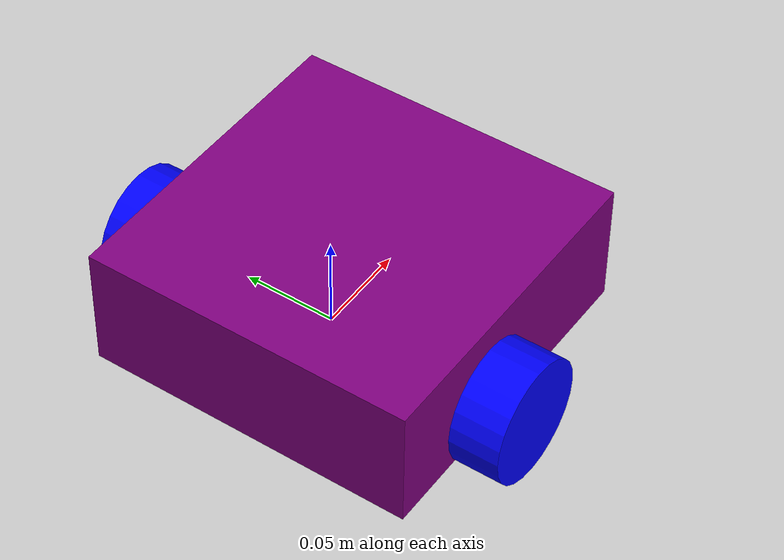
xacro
<?xml version="1.0"?>
<robot xmlns:xacro="http://www.ros.org/wiki/xacro">

    <xacro:include filename='materials.xacro'></xacro:include>
    <xacro:include filename='moi_macros.xacro'></xacro:include>

    <link name='base_link'>
    </link>

    <joint name='chassis_joint' type='fixed'>
        <parent link='base_link'/>
        <child link='chassis'/>
        <origin xyz='0.02 0 0.014'/>
    </joint>

    <link name='chassis'>
        <visual>
            <origin xyz='0 0 0'/>
            <geometry>
                <box size='0.18 0.18 0.068'/>
            </geometry>
            <material name='purple'/>
        </visual>
        <collision>
            <origin xyz='0 0 0'/>
            <geometry>
                <box size='0.18 0.18 0.068'/>
            </geometry>
        </collision>
        <xacro:cuboid_moi mass='1.0635' l='0.18' b='0.18' h='0.068'>
            <origin xyz='0 0 0' rpy='0 0 0'/>
        </xacro:cuboid_moi>
    </link>

    <joint name='left_wheel_joint' type='continuous'>
        <parent link='base_link'/>
        <child link='left_wheel'/>
        <origin xyz='0 0.09 0' rpy='-${pi/2} 0 0'/>
        <axis xyz='0 0 1'/>
    </joint>

    <link name='left_wheel'>
        <visual>
            <origin xyz='0 0 0.0135'/>
            <geometry>
                <cylinder radius='0.033' length='0.027'/>
            </geometry>
            <material name='blue'/>
        </visual>
        <collision>
			<origin xyz='0 0 0.0135'/>
            <geometry>
                <cylinder radius='0.033' length='0.027'/>
            </geometry>
        </collision>
        <xacro:cylinder_moi mass='0.033' r='0.033' l='0.027'>
            <origin xyz='0 0 0.0135' rpy='0 0 0'/>
        </xacro:cylinder_moi>
    </link>

    <joint name='right_wheel_joint' type='continuous'>
        <parent link='base_link'/>
        <child link='right_wheel'/>
        <origin xyz='0 -0.09 0' rpy='${pi/2} 0 0'/>
        <axis xyz='0 0 -1'/>
    </joint>

    <link name='right_wheel'>
        <visual>
            <origin xyz='0 0 0.0135'/>
            <geometry>
                <cylinder radius='0.033' length='0.027'/>
            </geometry>
            <material name='blue'/>
        </visual>
        <collision>
			<origin xyz='0 0 0.0135'/>
            <geometry>
                <cylinder radius='0.033' length='0.027'/>
            </geometry>
        </collision>
        <xacro:cylinder_moi mass='0.033' r='0.033' l='0.027'>
            <origin xyz='0 0 0.0135' rpy='0 0 0'/>
        </xacro:cylinder_moi>
    </link>

    <joint name='caster_wheel_joint' type='fixed'>
        <parent link='base_link'/>
        <child link='caster_wheel'/>
        <origin xyz='0.085 0 -0.02'/>
    </joint>

    <link name='caster_wheel'>
        <visual>
            <origin xyz='0 0 0'/>
            <geometry>
                <sphere radius='0.0085'/>
            </geometry>
            <material name='blue'/>
        </visual>
        <collision>
            <geometry>
                <sphere radius='0.0085'/>
            </geometry>
        </collision>
        <xacro:sphere_moi mass='0.043' r='0.0085'>
            <origin xyz='0 0 0' rpy='0 0 0'/>
        </xacro:sphere_moi>
    </link>

    <gazebo reference='caster_wheel'>
        <mu1 value='0.000001'/>
        <mu2 value='0.000001'/>
    </gazebo>

</robot>

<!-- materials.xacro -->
<robot xmlns:xacro="http://www.ros.org/wiki/xacro">

    <material name='black'>
        <color rgba='0 0 0 1'/>
    </material>

    <material name='grey'>
        <color rgba='0.5 0.5 0.5 0.5'/>
    </material>

    <material name='white'>
        <color rgba='1 1 1 1'/>
    </material>

    <material name='red'>
        <color rgba='1 0 0 1'/>
    </material>

    <material name='blue'>
        <color rgba='0 0 1 1'/>
    </material>

	<material name='purple'>
        <color rgba='0.5 0 0.5 1'/>
    </material>

</robot>

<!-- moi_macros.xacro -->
<robot xmlns:xacro="http://www.ros.org/wiki/xacro" >

    <!-- Formulas from https://en.wikipedia.org/wiki/List_of_moments_of_inertia -->

    <xacro:macro name="sphere_moi" params="mass r *origin">
        <inertial>
            <xacro:insert_block name="origin"/>
            <mass value="${mass}" />
            <inertia ixx="${(2/5) * mass * (r*r)}" ixy="0.0" ixz="0.0"
                    iyy="${(2/5) * mass * (r*r)}" iyz="0.0"
                    izz="${(2/5) * mass * (r*r)}" />
        </inertial>
    </xacro:macro>

    <xacro:macro name="cuboid_moi" params="mass l b h *origin">
        <inertial>
            <xacro:insert_block name="origin"/>
            <mass value="${mass}" />
            <inertia ixx="${(1/12) * mass * (b*b+h*h)}" ixy="0.0" ixz="0.0"
                    iyy="${(1/12) * mass * (l*l+h*h)}" iyz="0.0"
                    izz="${(1/12) * mass * (l*l+b*b)}" />
        </inertial>
    </xacro:macro>

    <xacro:macro name="cylinder_moi" params="mass l r *origin">
        <inertial>
            <xacro:insert_block name="origin"/>
            <mass value="${mass}" />
            <inertia ixx="${(1/12) * mass * (3*r*r + l*l)}" ixy="0.0" ixz="0.0"
                    iyy="${(1/12) * mass * (3*r*r + l*l)}" iyz="0.0"
                    izz="${(1/2) * mass * (r*r)}" />
        </inertial>
    </xacro:macro>

</robot>
